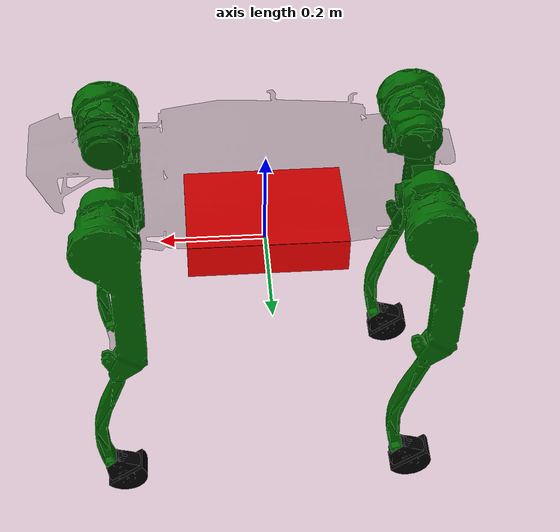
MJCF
<mujoco model="demir">
  <compiler angle="radian"/>

  <asset>
    <mesh name="body" file="body.stl"/>
    <mesh name="abduction" file="abduction.stl"/>
    <mesh name="hip_R" file="hip_R.stl"/>
    <mesh name="knee" file="knee.stl"/>
    <mesh name="hip_L" file="hip_L.stl"/>
    <mesh name="foot" file="foot.stl"/>

  </asset>

  <worldbody>
    <body name="demir/base_link_inertia" pos="0 0 0.17" >
      <site name="sensorsurf" pos="0 0 0" size=".005 .005 .005" rgba="0.5 0.5 0.5 1" euler="0 0 0"/>
      <inertial pos="0.0145231 0.004856 0.0015483" quat="0.000802123 0.724023 0.00431105 0.689762" mass="19.784" diaginertia="0.644006 0.569823 0.192396"/>
      <joint name="demir/base_joint" type="free" limited="false" actuatorfrclimited="false"/>
      <geom type="mesh" mesh="body" rgba="0 0 0 0.1" />
      <geom name="below" type="box" size="0.15 0.1 0.0375 " pos="0 0.0000 -0.1275" rgba="1 0 0 0.9" />
      <body name="demir/abad_1" pos="0.229275 -0.0805 0" >
        <inertial pos="0.0213551 -0.0020253 -8.59e-05" quat="0.492821 0.490106 0.51002 0.506757" mass="0.67" diaginertia="0.00314843 0.0029222 0.000968106"/>
        <joint name="demir/abad_1_joint" pos="0 0 0" axis="1 0 0" range="-3.14159 3.14159" actuatorfrcrange="-1000 1000" damping="0.03" frictionloss="0.05"/>
        <geom pos="0 0 0" quat="0.000796327 -1 0 0" type="mesh" rgba="0 0.4 0 1" mesh="abduction"/>
        <body name="demir/hip_1" pos="0.064 -0.0255 0">
          <inertial pos="-0.0077265 -0.05615 -0.0569718" quat="0.827346 0.0229031 -0.0663041 0.557295" mass="2.015" diaginertia="0.0300671 0.028203 0.00420615"/>
          <joint name="demir/hip_1_joint" pos="0 0 0" axis="0 -1 0" range="-3.14159 3.14159" actuatorfrcrange="-1000 1000" damping="0.03" frictionloss="0.05"/>
          <geom name= "hip1" type="mesh" rgba="0 0.4 0 1" mesh="hip_R"/>
          <body name="demir/knee_1" pos="0 -0.07835 -0.32">
            <inertial pos="0.0149488 -9.3796e-05 -0.25134" quat="0.706864 0.0361936 0.0365843 0.705475" mass="0.919" diaginertia="0.00863144 0.0084593 0.000305758"/>
            <joint name="demir/knee_1_joint" pos="0 0 0" axis="0 -1 0" range="-3.14159 3.14159" actuatorfrcrange="-1000 1000" damping="0.03" frictionloss="0.05"/>
            <geom type="mesh" rgba="0 0.4 0 1" mesh="knee"/>
            <geom name="ROBOT_FOOT_1" type="mesh" pos="0 -0.0006 -0.3269" rgba="0 0 0 0.1" mesh="foot"/>

          </body>
        </body>
      </body>
      <body name="demir/abad_2" pos="0.229275 0.0805 0">
        <inertial pos="0.0213551 0.0020253 -8.59e-05" quat="0.506757 0.51002 0.490106 0.492821" mass="0.67" diaginertia="0.00314843 0.0029222 0.000968106"/>
        <joint name="demir/abad_2_joint" pos="0 0 0" axis="1 0 0" range="-3.14159 3.14159" actuatorfrcrange="-1000 1000" damping="0.03" frictionloss="0.05"/>
        <geom type="mesh" rgba="0 0.4 0 1" mesh="abduction"/>
        <body name="demir/hip_2" pos="0.064 0.0255 0">
          <inertial pos="-0.0077265 0.05615 -0.0569718" quat="0.557295 -0.0663041 0.0229031 0.827346" mass="2.015" diaginertia="0.0300671 0.028203 0.00420615"/>
          <joint name="demir/hip_2_joint" pos="0 0 0" axis="0 -1 0" range="-3.14159 3.14159" actuatorfrcrange="-1000 1000" damping="0.03" frictionloss="0.05"/>
          <geom type="mesh" name= "hip2" rgba="0 0.4 0 1" mesh="hip_L"/>
          <body name="demir/knee_2" pos="0 0.07835 -0.32">
            <inertial pos="0.0149488 9.3796e-05 -0.25134" quat="0.705475 0.0365843 0.0361936 0.706864" mass="0.919" diaginertia="0.00863144 0.0084593 0.000305758"/>
            <joint name="demir/knee_2_joint" pos="0 0 0" axis="0 -1 0" range="-3.14159 3.14159" actuatorfrcrange="-1000 1000" damping="0.03" frictionloss="0.05"/>
            <geom type="mesh" rgba="0 0.4 0 1" mesh="knee"/>
            <geom name="ROBOT_FOOT_2" type="mesh" pos="0 0.0006 -0.3269" rgba="0 0 0 1" mesh="foot"/>

          </body>
        </body>
      </body>
      <body name="demir/abad_3" pos="-0.229275 -0.0805 0">
        <inertial pos="-0.0213551 -0.0020253 -8.59e-05" quat="0.51002 0.506757 0.492821 0.490106" mass="0.67" diaginertia="0.00314843 0.0029222 0.000968106"/>
        <joint name="demir/abad_3_joint" pos="0 0 0" axis="1 0 0" range="-3.14159 3.14159" actuatorfrcrange="-1000 1000" damping="0.03" frictionloss="0.05"/>
        <geom pos="0 0 0" quat="6.34136e-07 -0.000796326 -0.000796326 -0.999999" type="mesh" rgba="0 0.4 0 1" mesh="abduction"/>
        <body name="demir/hip_3" pos="-0.064 -0.0255 0">
          <inertial pos="-0.0077265 -0.05615 -0.0569718" quat="0.557295 0.0663041 -0.0229031 0.827346" mass="2.015" diaginertia="0.0300671 0.028203 0.00420615"/>
          <joint name="demir/hip_3_joint" pos="0 0 0" axis="0 -1 0" range="-3.14159 3.14159" actuatorfrcrange="-1000 1000" damping="0.03" frictionloss="0.05"/>
          <geom type="mesh" name= "hip3" rgba="0 0.4 0 1" mesh="hip_R"/>
          <body name="demir/knee_3" pos="0 -0.07835 -0.32">
            <inertial pos="0.0149488 -9.3796e-05 -0.25134" quat="0.706282 0.00169874 0.00201806 0.707925" mass="0.919" diaginertia="0.00863144 0.00837337 0.000391682"/>
            <joint name="demir/knee_3_joint" pos="0 0 0" axis="0 -1 0" range="-3.14159 3.14159" actuatorfrcrange="-1000 1000" damping="0.03" frictionloss="0.05"/>
            <geom type="mesh" rgba="0 0.4 0 1" mesh="knee"/>
            <geom name="ROBOT_FOOT_3" type="mesh" pos="0 -0.0006 -0.3269" rgba="0 0 0 1" mesh="foot"/>

          </body>
        </body>
      </body>
      <body name="demir/abad_4" pos="-0.229275 0.0805 0">
        <inertial pos="-0.0213551 0.0020253 -8.59e-05" quat="0.490106 0.492821 0.506757 0.51002" mass="0.67" diaginertia="0.00314843 0.0029222 0.000968106"/>
        <joint name="demir/abad_4_joint" pos="0 0 0" axis="1 0 0" range="-3.14159 3.14159" actuatorfrcrange="-1000 1000" damping="0.03" frictionloss="0.05"/>
        <geom pos="0 0 0" quat="0.000796327 0 -1 0" type="mesh" rgba="0 0.4 0 1" mesh="abduction"/>
        <body name="demir/hip_4" pos="-0.064 0.0255 0">
          <inertial pos="-0.0077265 0.05615 -0.0569718" quat="0.827346 -0.0229031 0.0663041 0.557295" mass="2.015" diaginertia="0.0300671 0.028203 0.00420615"/>
          <joint name="demir/hip_4_joint" pos="0 0 0" axis="0 -1 0" range="-3.14159 3.14159" actuatorfrcrange="-1000 1000" damping="0.03" frictionloss="0.05"/>
          <geom type="mesh" name= "hip4" rgba="0 0.4 0 1" mesh="hip_L"/>
          <body name="demir/knee_4" pos="0 0.07835 -0.32">
            <inertial pos="0.0149488 9.3796e-05 -0.25134" quat="0.707925 0.00201806 0.00169874 0.706282" mass="0.919" diaginertia="0.00863144 0.00837337 0.000391682"/>
            <joint name="demir/knee_4_joint" pos="0 0 0" axis="0 -1 0" range="-3.14159 3.14159" actuatorfrcrange="-1000 1000" damping="0.03" frictionloss="0.05"/>
            <geom type="mesh" rgba="0 0.4 0 1" mesh="knee"/>
            <geom name="ROBOT_FOOT_4" type="mesh" pos="0 0.0006 -0.3269" rgba="0 0 0 1" mesh="foot"/>

          </body>
        </body>
      </body>
    </body>
  </worldbody>
</mujoco>
